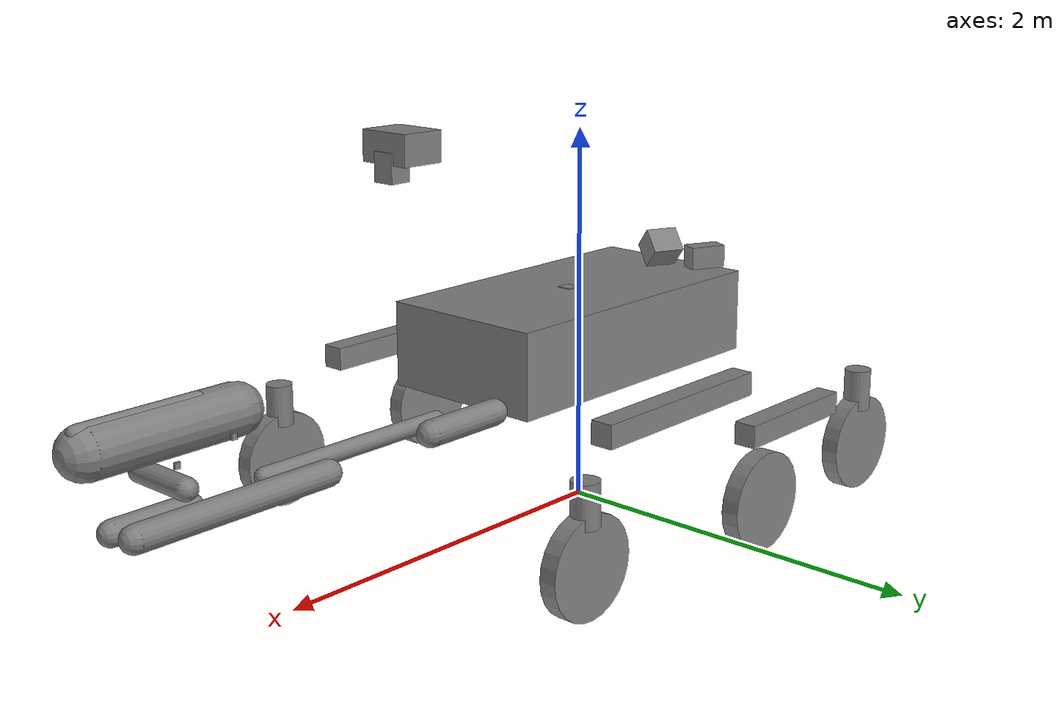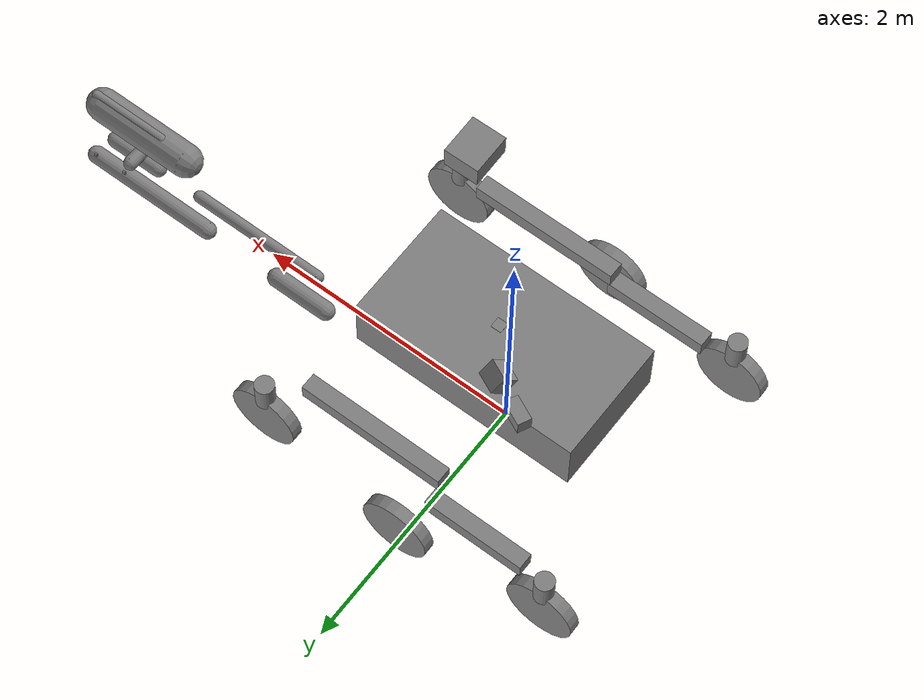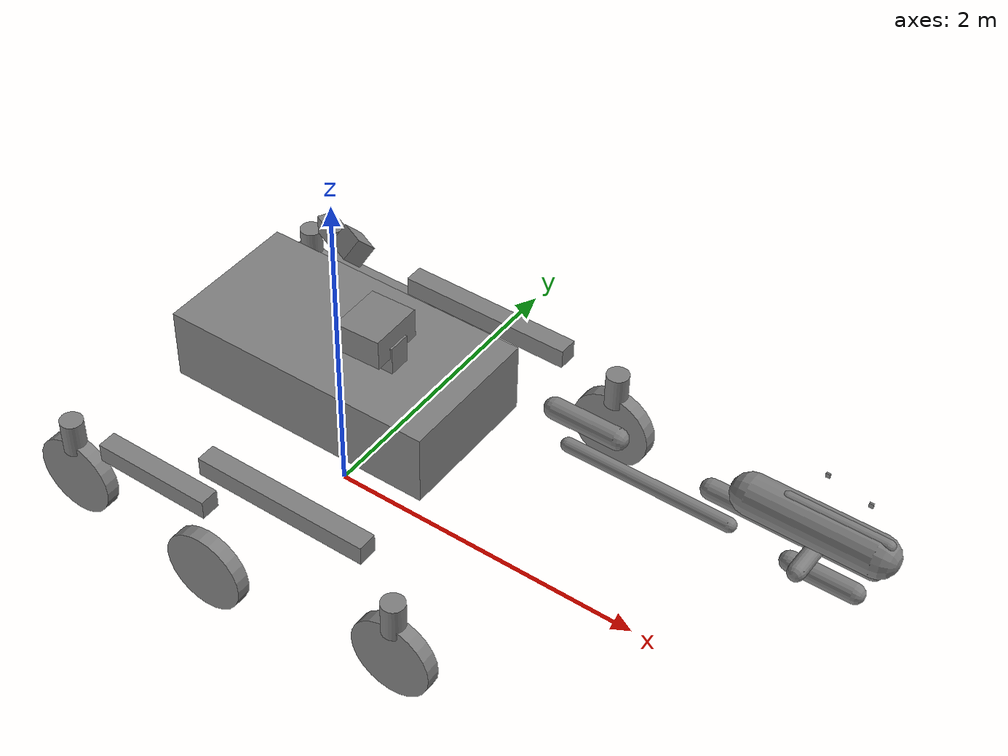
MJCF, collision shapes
<mujoco model="nasa_perseverance">
  <!-- Simulation-ready approximation from JPL visualization URDF.
       Not a flight-accurate dynamics model. Credit NASA/JPL-Caltech. -->
  <compiler angle="radian" meshdir="assets" texturedir="assets" autolimits="true"/>
  <option timestep="0.002" gravity="0 0 -9.81" integrator="implicitfast" cone="elliptic" impratio="10"/>
  <default>
    <default class="rover">
      <joint damping="2" armature="0.2"/>
      <default class="visual">
        <geom type="mesh" material="rover" contype="0" conaffinity="0" group="2"/>
      </default>
      <default class="collision">
        <geom group="3" contype="1" conaffinity="1" solref="0.01 1"/>
      </default>
      <!-- Compliant wheel contact approximates spoke flex; suspension stays articulated. -->
      <default class="wheel">
        <joint damping="0.15" armature="0.4" frictionloss="0.5"/>
        <geom type="cylinder" group="3" condim="3" friction="1.4 0.8 0.005" solref="0.04 1" solimp="0.9 0.95 0.001"/>
      </default>
      <default class="steer">
        <joint damping="2" armature="0.3" limited="true" range="-1.57 1.57"/>
      </default>
      <default class="suspension">
        <joint damping="80" armature="0.5" limited="true"/>
      </default>
    </default>
  </default>
  <asset>
    <texture type="2d" name="rover" file="M2020_Rover_Texture.png"/>
    <material name="rover" texture="rover" texuniform="false" rgba="1 1 1 1" metallic="0" roughness="1"/>
    <mesh name="chassis" file="chassis.obj"/>
    <mesh name="rocker_left" file="rocker_left.obj"/>
    <mesh name="bogie_left" file="bogie_left.obj"/>
    <mesh name="steer_lr" file="steer_lr.obj"/>
    <mesh name="wheel_lr" file="wheel_lr.obj"/>
    <mesh name="wheel_lm" file="wheel_lm.obj"/>
    <mesh name="steer_lf" file="steer_lf.obj"/>
    <mesh name="wheel_lf" file="wheel_lf.obj"/>
    <mesh name="rocker_right" file="rocker_right.obj"/>
    <mesh name="bogie_right" file="bogie_right.obj"/>
    <mesh name="steer_rr" file="steer_rr.obj"/>
    <mesh name="wheel_rr" file="wheel_rr.obj"/>
    <mesh name="wheel_rm" file="wheel_rm.obj"/>
    <mesh name="steer_rf" file="steer_rf.obj"/>
    <mesh name="wheel_rf" file="wheel_rf.obj"/>
    <mesh name="rsm_az" file="rsm_az.obj"/>
    <mesh name="rsm_el" file="rsm_el.obj"/>
    <mesh name="hga_az" file="hga_az.obj"/>
    <mesh name="hga_el" file="hga_el.obj"/>
    <mesh name="ra_link1" file="ra_link1.obj"/>
    <mesh name="ra_link2" file="ra_link2.obj"/>
    <mesh name="ra_link3" file="ra_link3.obj"/>
    <mesh name="ra_link4" file="ra_link4.obj"/>
    <mesh name="ra_link5" file="ra_link5.obj"/>
    <mesh name="turret" file="turret.obj"/>
    <mesh name="corer_feed" file="corer_feed.obj"/>
    <mesh name="stabilizer_far" file="stabilizer_far.obj"/>
    <mesh name="stabilizer_near" file="stabilizer_near.obj"/>
    <mesh name="watson_cap" file="watson_cap.obj"/>
    <mesh name="sherloc_cap" file="sherloc_cap.obj"/>
    <mesh name="differential" file="differential.obj"/>
  </asset>
  <worldbody>
    <body name="chassis" pos="0 0 0.002412" childclass="rover">
      <light name="tracking" mode="trackcom" pos="0 0 3"/>
      <freejoint name="root"/>
      <inertial pos="-0.128995 -0.0673295 1.204377" mass="652.255" diaginertia="244.192 587.067 650.916"/>
      <geom mesh="chassis" class="visual"/>
      <geom mesh="differential" class="visual"/>
      <geom name="chassis_collision" class="collision" type="box" size="0.85 0.45 0.22" pos="0.05 0 0.95"/>
      <body name="rocker_left" pos="0.30402 0.79959 0.89288" quat="1 0 0 0" childclass="rover">
        <joint name="left_rocker" class="suspension" type="hinge" axis="0 -1 0" limited="true" range="-0.35 0.35"/>
        <inertial pos="0.069102 0.1306575 -0.108713" mass="30.6944" diaginertia="0.904382 8.50565 8.60951"/>
        <geom mesh="rocker_left" class="visual"/>
        <geom name="rocker_left_collision" class="collision" type="box" size="0.55 0.06 0.06" pos="0.069102 0.1306575 -0.108713"/>
        <body name="bogie_left" pos="-0.754 0.12 -0.23" quat="1 0 0 0" childclass="rover">
          <joint name="left_bogie" class="suspension" type="hinge" axis="0 -1 0" limited="true" range="-0.4 0.4"/>
          <inertial pos="-0.050438 0.077519 -0.1363555" mass="21.1024" diaginertia="1.24746 3.76493 3.48635"/>
          <geom mesh="bogie_left" class="visual"/>
          <geom name="bogie_left_collision" class="collision" type="box" size="0.38 0.06 0.06" pos="-0.050438 0.077519 -0.1363555"/>
          <body name="steer_lr" pos="-0.625 0.14291 -0.4" quat="1 0 0 0" childclass="rover">
            <joint name="lr_steer" class="steer" type="hinge" axis="0 0 -1" limited="true" range="-1.57 1.57"/>
            <inertial pos="8e-05 -0.1126225 0.177625" mass="9.59199" diaginertia="0.338112 0.22318 0.184669"/>
            <geom mesh="steer_lr" class="visual"/>
            <geom name="steer_lr_collision" class="collision" type="cylinder" size="0.07 0.11" pos="0 0 0.30"/>
            <body name="wheel_lr" pos="0 0 0" quat="1 0 0 0" childclass="rover">
              <joint name="lr_drive" class="wheel" type="hinge" axis="0 1 0"/>
              <inertial pos="-0.0002 -4e-06 -0.000413" mass="19.184" diaginertia="0.486278 0.623125 0.486278"/>
              <geom mesh="wheel_lr" class="visual"/>
              <geom name="wheel_lr_collision" class="wheel" size="0.254879 0.045" pos="-0.0002 -4e-06 -0.000413" euler="1.570796 0 0"/>
            </body>
          </body>
          <body name="wheel_lm" pos="0.44998 0.26491 -0.4" quat="1 0 0 0" childclass="rover">
            <joint name="lm_drive" class="wheel" type="hinge" axis="0 1 0"/>
            <inertial pos="-0.0001785 -0.002005 -0.000414" mass="19.184" diaginertia="0.484761 0.620086 0.484761"/>
            <geom mesh="wheel_lm" class="visual"/>
            <geom name="wheel_lm_collision" class="wheel" size="0.254256 0.045" pos="-0.0001785 -0.002005 -0.000414" euler="1.570796 0 0"/>
          </body>
        </body>
        <body name="steer_lf" pos="0.881 0.26291 -0.63" quat="1 0 0 0" childclass="rover">
          <joint name="lf_steer" class="steer" type="hinge" axis="0 0 -1" limited="true" range="-1.57 1.57"/>
          <inertial pos="-0.0063445 -0.1498865 0.2566045" mass="9.59199" diaginertia="0.582526 0.373005 0.287876"/>
          <geom mesh="steer_lf" class="visual"/>
          <geom name="steer_lf_collision" class="collision" type="cylinder" size="0.07 0.11" pos="0 0 0.30"/>
          <body name="wheel_lf" pos="0 0 0" quat="1 0 0 0" childclass="rover">
            <joint name="lf_drive" class="wheel" type="hinge" axis="0 1 0"/>
            <inertial pos="-0.0001985 -4e-06 -0.000413" mass="19.184" diaginertia="0.486276 0.623121 0.486276"/>
            <geom mesh="wheel_lf" class="visual"/>
            <geom name="wheel_lf_collision" class="wheel" size="0.254878 0.045" pos="-0.0001985 -4e-06 -0.000413" euler="1.570796 0 0"/>
          </body>
        </body>
      </body>
      <body name="rocker_right" pos="0.30402 -0.79959 0.89288" quat="1 0 0 0" childclass="rover">
        <joint name="right_rocker" class="suspension" type="hinge" axis="0 -1 0" limited="true" range="-0.35 0.35"/>
        <inertial pos="0.069102 -0.1306575 -0.108713" mass="30.6944" diaginertia="0.904382 8.50565 8.60951"/>
        <geom mesh="rocker_right" class="visual"/>
        <geom name="rocker_right_collision" class="collision" type="box" size="0.55 0.06 0.06" pos="0.069102 -0.1306575 -0.108713"/>
        <body name="bogie_right" pos="-0.754 -0.12 -0.23" quat="1 0 0 0" childclass="rover">
          <joint name="right_bogie" class="suspension" type="hinge" axis="0 -1 0" limited="true" range="-0.4 0.4"/>
          <inertial pos="-0.050438 -0.077519 -0.1363555" mass="21.1024" diaginertia="1.24746 3.76493 3.48635"/>
          <geom mesh="bogie_right" class="visual"/>
          <geom name="bogie_right_collision" class="collision" type="box" size="0.38 0.06 0.06" pos="-0.050438 -0.077519 -0.1363555"/>
          <body name="steer_rr" pos="-0.625 -0.14291 -0.4" quat="1 0 0 0" childclass="rover">
            <joint name="rr_steer" class="steer" type="hinge" axis="0 0 -1" limited="true" range="-1.57 1.57"/>
            <inertial pos="8e-05 0.1126225 0.177625" mass="9.59199" diaginertia="0.338112 0.22318 0.184669"/>
            <geom mesh="steer_rr" class="visual"/>
            <geom name="steer_rr_collision" class="collision" type="cylinder" size="0.07 0.11" pos="0 0 0.30"/>
            <body name="wheel_rr" pos="0 0 0" quat="1 0 0 0" childclass="rover">
              <joint name="rr_drive" class="wheel" type="hinge" axis="0 1 0"/>
              <inertial pos="-0.0001865 -6e-06 -0.000414" mass="19.184" diaginertia="0.486269 0.623107 0.486269"/>
              <geom mesh="wheel_rr" class="visual"/>
              <geom name="wheel_rr_collision" class="wheel" size="0.254875 0.045" pos="-0.0001865 -6e-06 -0.000414" euler="1.570796 0 0"/>
            </body>
          </body>
          <body name="wheel_rm" pos="0.44998 -0.26491 -0.4" quat="1 0 0 0" childclass="rover">
            <joint name="rm_drive" class="wheel" type="hinge" axis="0 1 0"/>
            <inertial pos="-0.0001815 5e-06 -0.000412" mass="19.184" diaginertia="0.486086 0.622737 0.486086"/>
            <geom mesh="wheel_rm" class="visual"/>
            <geom name="wheel_rm_collision" class="wheel" size="0.254799 0.045" pos="-0.0001815 5e-06 -0.000412" euler="1.570796 0 0"/>
          </body>
        </body>
        <body name="steer_rf" pos="0.881 -0.26291 -0.63" quat="1 0 0 0" childclass="rover">
          <joint name="rf_steer" class="steer" type="hinge" axis="0 0 -1" limited="true" range="-1.57 1.57"/>
          <inertial pos="-0.0063445 0.1498865 0.2566045" mass="9.59199" diaginertia="0.582526 0.373005 0.287876"/>
          <geom mesh="steer_rf" class="visual"/>
          <geom name="steer_rf_collision" class="collision" type="cylinder" size="0.07 0.11" pos="0 0 0.30"/>
          <body name="wheel_rf" pos="0 0 0" quat="1 0 0 0" childclass="rover">
            <joint name="rf_drive" class="wheel" type="hinge" axis="0 1 0"/>
            <inertial pos="-0.0001975 4e-06 -0.000414" mass="19.184" diaginertia="0.486274 0.623116 0.486274"/>
            <geom mesh="wheel_rf" class="visual"/>
            <geom name="wheel_rf_collision" class="wheel" size="0.254877 0.045" pos="-0.0001975 4e-06 -0.000414" euler="1.570796 0 0"/>
          </body>
        </body>
      </body>
      <body name="rsm_az" pos="0.804037 -0.559028 1.91927" quat="-0.008726216 0 0 0.99996193" childclass="rover">
        <joint name="mast_az" class="rover" type="hinge" axis="0 0 -1" limited="true" range="0 6.31809"/>
        <inertial pos="-1.15e-05 -7.9e-05 -0.084906" mass="7.67359" diaginertia="0.0867923 0.0874965 0.0661379"/>
        <geom mesh="rsm_az" class="visual"/>
        <geom name="rsm_az_collision" class="collision" type="box" size="0.062868575 0.0622028 0.07996945" pos="-1.15e-05 -7.9e-05 -0.084906"/>
        <body name="rsm_el" pos="0 0 0" quat="0.70090818 -1.8762999e-06 0.71325151 1.8762999e-06" childclass="rover">
          <joint name="mast_el" class="rover" type="hinge" axis="0 -1 0" limited="true" range="0 3.1765"/>
          <inertial pos="-0.0122145 0.0035235 0.0775645" mass="11.5104" diaginertia="0.499595 0.298602 0.377966"/>
          <geom mesh="rsm_el" class="visual"/>
          <geom name="rsm_el_collision" class="collision" type="box" size="0.083524925 0.15107318 0.12870853" pos="-0.0122145 0.0035235 0.0775645"/>
        </body>
      </body>
      <body name="hga_az" pos="-0.36998 0.475 1.13288" quat="0.97629604 0 0 -0.21643946" childclass="rover">
        <joint name="hga_az" class="rover" type="hinge" axis="0 0 -1"/>
        <inertial pos="-0.053 -4.15e-05 0.1942195" mass="2.8776" diaginertia="0.0184475 0.0375912 0.0350012"/>
        <geom mesh="hga_az" class="visual"/>
        <geom name="hga_az_collision" class="collision" type="box" size="0.0924 0.050004625 0.057595725" pos="-0.053 -4.15e-05 0.1942195"/>
        <body name="hga_el" pos="0 0 0.248" quat="0.92387956 0.38268336 0 0" childclass="rover">
          <joint name="hga_el" class="rover" type="hinge" axis="1 0 0"/>
          <inertial pos="0.201444 0.010474 0.0111135" mass="4.79599" diaginertia="0.0493675 0.0593756 0.0593861"/>
          <geom mesh="hga_el" class="visual"/>
          <geom name="hga_el_collision" class="collision" type="box" size="0.0810271 0.0683496 0.068335025" pos="0.201444 0.010474 0.0111135"/>
        </body>
      </body>
      <body name="ra_base" pos="0.09002 0 1.13338" quat="1 0 0 0" childclass="rover">
        <inertial pos="0 0 0" mass="1.9184" diaginertia="0.00319733 0.00319733 0.00319733"/>
        <geom class="collision" type="box" size="0.04 0.04 0.04"/>
        <body name="ra_link1" pos="1.1756 0.4515 -0.3116" quat="1 0 0 0" childclass="rover">
          <joint name="arm_joint1" class="rover" type="hinge" axis="0 0 -1" limited="true" range="-3.145 1.592"/>
          <inertial pos="0.081965 0.0124565 0.0231115" mass="11.5104" diaginertia="0.234326 0.263808 0.288002"/>
          <geom mesh="ra_link1" class="visual"/>
          <geom name="ra_link1_collision" class="collision" type="capsule" size="0.0642416 0.203405" pos="0.081965 0.0124565 0.0231115" euler="0 1.570796 0"/>
          <body name="ra_link2" pos="0.166 0 0" quat="1 0 0 0" childclass="rover">
            <joint name="arm_joint2" class="rover" type="hinge" axis="0 1 0" limited="true" range="-3.267 0.126"/>
            <inertial pos="0.41712 -0.1613765 4.45e-05" mass="15.3472" diaginertia="0.123573 1.32786 1.35358"/>
            <geom mesh="ra_link2" class="visual"/>
            <geom name="ra_link2_collision" class="collision" type="capsule" size="0.0422781 0.5" pos="0.41712 -0.1613765 4.45e-05" euler="0 1.570796 0"/>
            <body name="ra_link3" pos="0.8194 0 0" quat="1 0 0 0" childclass="rover">
              <joint name="arm_joint3" class="rover" type="hinge" axis="0 1 0" limited="true" range="-2.866 2.866"/>
              <inertial pos="0.3702 0.0059495 0.001224" mass="13.4288" diaginertia="0.200187 1.08757 1.15983"/>
              <geom mesh="ra_link3" class="visual"/>
              <geom name="ra_link3_collision" class="collision" type="capsule" size="0.0610573 0.4782" pos="0.3702 0.0059495 0.001224" euler="0 1.570796 0"/>
              <body name="ra_link4" pos="0.7533 0 0" quat="1 0 0 0" childclass="rover">
                <joint name="arm_joint4" class="rover" type="hinge" axis="0 1 0" limited="true" range="-0.178 3.669"/>
                <inertial pos="-0.104065 -0.171089 -0.0279455" mass="9.59199" diaginertia="0.130314 0.195047 0.156247"/>
                <geom mesh="ra_link4" class="visual"/>
                <geom name="ra_link4_collision" class="collision" type="capsule" size="0.0569179 0.185895" pos="-0.104065 -0.171089 -0.0279455" euler="0 1.570796 0"/>
                <body name="ra_link5" pos="-0.1757 -0.1791 0" quat="1 0 0 0" childclass="rover">
                  <joint name="arm_joint5" class="rover" type="hinge" axis="0 0 -1" limited="true" range="-0.353 6.636"/>
                  <inertial pos="-0.00308 -0.0086275 0.114969" mass="7.67359" diaginertia="0.0829243 0.0742939 0.112818"/>
                  <geom mesh="ra_link5" class="visual"/>
                  <geom name="ra_link5_collision" class="collision" type="capsule" size="0.0499485 0.154079" pos="-0.00308 -0.0086275 0.114969" euler="1.570796 0 0"/>
                  <body name="turret" pos="-2.7386 -0.2724 0.3116" quat="1 0 0 0" childclass="rover">
                    <inertial pos="2.721945 0.2656075 0.0079265" mass="21.1024" diaginertia="0.943939 1.05246 1.66268"/>
                    <geom mesh="turret" class="visual"/>
                    <geom name="turret_collision" class="collision" type="capsule" size="0.116331 0.354825" pos="2.721945 0.2656075 0.0079265" euler="0 1.570796 0"/>
                    <body name="corer_feed" pos="2.5301 0.272349 0.0168656" quat="1 0 0 0" childclass="rover">
                      <joint name="drill_feed" class="rover" type="slide" axis="1 0 0" limited="true" range="0 0.12"/>
                      <inertial pos="0.4319185 -2.75e-05 0.0003385" mass="3.8368" diaginertia="0.00270857 0.00680239 0.00683302"/>
                      <geom mesh="corer_feed" class="visual"/>
                      <geom name="corer_feed_collision" class="collision" type="capsule" size="0.035 0.0653595" pos="0.4319185 -2.75e-05 0.0003385" euler="0 1.570796 0"/>
                    </body>
                    <body name="stabilizer_far" pos="2.5301 0.272349 0.0168656" quat="1 0 0 0" childclass="rover">
                      <joint name="stabilizer_lower" class="rover" type="slide" axis="-1 0 0" limited="true" range="0 0.12"/>
                      <inertial pos="0.304999 6e-05 -0.0801865" mass="1.4388" diaginertia="0.000220247 0.0372965 0.0373214"/>
                      <geom mesh="stabilizer_far" class="visual"/>
                      <geom name="stabilizer_far_collision" class="collision" type="capsule" size="0.035 0.2785" pos="0.304999 6e-05 -0.0801865" euler="0 1.570796 0"/>
                    </body>
                    <body name="stabilizer_near" pos="2.5301 0.272349 0.0168656" quat="1 0 0 0" childclass="rover">
                      <joint name="stabilizer_upper" class="rover" type="slide" axis="-1 0 0" limited="true" range="0 0.12"/>
                      <inertial pos="0.304999 5.95e-05 0.080255" mass="1.4388" diaginertia="0.000220522 0.0372965 0.0373217"/>
                      <geom mesh="stabilizer_near" class="visual"/>
                      <geom name="stabilizer_near_collision" class="collision" type="capsule" size="0.035 0.2785" pos="0.304999 5.95e-05 0.080255" euler="0 1.570796 0"/>
                    </body>
                    <body name="watson_cap" pos="2.6025 0.581204 0.0309103" quat="1 0 0 0" childclass="rover">
                      <joint name="watson_cap" class="rover" type="hinge" axis="0 0 1" limited="true" range="-0.2 1.8"/>
                      <inertial pos="0.019445 0.0075315 0.000315" mass="0.767359" diaginertia="0.000187565 0.000293826 0.000161428"/>
                      <geom mesh="watson_cap" class="visual"/>
                      <geom name="watson_cap_collision" class="collision" type="box" size="0.01258125 0.005711475 0.01375495" pos="0.019445 0.0075315 0.000315"/>
                    </body>
                    <body name="sherloc_cap" pos="2.86084 0.58439 -0.0124626" quat="1 0 0 0" childclass="rover">
                      <joint name="sherloc_cap" class="rover" type="hinge" axis="0 0 1" limited="true" range="-0.2 1.8"/>
                      <inertial pos="0.019745 -0.0068005 -0.0069615" mass="0.767359" diaginertia="0.000182889 0.000295573 0.000159943"/>
                      <geom mesh="sherloc_cap" class="visual"/>
                      <geom name="sherloc_cap_collision" class="collision" type="box" size="0.01269675 0.0055 0.013723875" pos="0.019745 -0.0068005 -0.0069615"/>
                    </body>
                  </body>
                </body>
              </body>
            </body>
          </body>
        </body>
      </body>
    </body>
  </worldbody>
  <contact>
    <exclude body1="chassis" body2="wheel_lf"/>
    <exclude body1="chassis" body2="wheel_lm"/>
    <exclude body1="chassis" body2="wheel_lr"/>
    <exclude body1="chassis" body2="wheel_rf"/>
    <exclude body1="chassis" body2="wheel_rm"/>
    <exclude body1="chassis" body2="wheel_rr"/>
    <exclude body1="chassis" body2="steer_lf"/>
    <exclude body1="chassis" body2="steer_lr"/>
    <exclude body1="chassis" body2="steer_rf"/>
    <exclude body1="chassis" body2="steer_rr"/>
    <exclude body1="chassis" body2="bogie_left"/>
    <exclude body1="chassis" body2="bogie_right"/>
    <exclude body1="chassis" body2="rocker_left"/>
    <exclude body1="chassis" body2="rocker_right"/>
    <exclude body1="chassis" body2="ra_link1"/>
    <exclude body1="chassis" body2="ra_link2"/>
    <exclude body1="chassis" body2="ra_link3"/>
    <exclude body1="chassis" body2="ra_base"/>
    <exclude body1="chassis" body2="turret"/>
    <exclude body1="rocker_left" body2="wheel_lf"/>
    <exclude body1="rocker_left" body2="wheel_lm"/>
    <exclude body1="rocker_left" body2="wheel_lr"/>
    <exclude body1="rocker_left" body2="steer_lf"/>
    <exclude body1="rocker_left" body2="steer_lr"/>
    <exclude body1="rocker_right" body2="wheel_rf"/>
    <exclude body1="rocker_right" body2="wheel_rm"/>
    <exclude body1="rocker_right" body2="wheel_rr"/>
    <exclude body1="rocker_right" body2="steer_rf"/>
    <exclude body1="rocker_right" body2="steer_rr"/>
    <exclude body1="bogie_left" body2="wheel_lr"/>
    <exclude body1="bogie_left" body2="steer_lr"/>
    <exclude body1="bogie_right" body2="wheel_rr"/>
    <exclude body1="bogie_right" body2="steer_rr"/>
    <exclude body1="steer_lf" body2="ra_link1"/>
    <exclude body1="steer_lf" body2="ra_link2"/>
    <exclude body1="steer_rf" body2="ra_link1"/>
    <exclude body1="steer_rf" body2="ra_link2"/>
    <exclude body1="wheel_lf" body2="ra_link1"/>
    <exclude body1="ra_link1" body2="ra_link3"/>
    <exclude body1="ra_link1" body2="ra_link4"/>
    <exclude body1="ra_link2" body2="ra_link4"/>
    <exclude body1="ra_link2" body2="ra_link5"/>
    <exclude body1="ra_link3" body2="ra_link5"/>
    <exclude body1="ra_link3" body2="turret"/>
  </contact>
  <equality>
    <joint name="rocker_differential" joint1="left_rocker" joint2="right_rocker" polycoef="0 -1 0 0 0" solref="0.02 1"/>
  </equality>
  <actuator>
    <velocity name="lf_drive" joint="lf_drive" kv="80" ctrllimited="true" ctrlrange="-8 8"/>
    <velocity name="lm_drive" joint="lm_drive" kv="80" ctrllimited="true" ctrlrange="-8 8"/>
    <velocity name="lr_drive" joint="lr_drive" kv="80" ctrllimited="true" ctrlrange="-8 8"/>
    <velocity name="rf_drive" joint="rf_drive" kv="80" ctrllimited="true" ctrlrange="-8 8"/>
    <velocity name="rm_drive" joint="rm_drive" kv="80" ctrllimited="true" ctrlrange="-8 8"/>
    <velocity name="rr_drive" joint="rr_drive" kv="80" ctrllimited="true" ctrlrange="-8 8"/>
    <position name="lf_steer" joint="lf_steer" kp="800" kv="40" ctrlrange="-1.57 1.57"/>
    <position name="rf_steer" joint="rf_steer" kp="800" kv="40" ctrlrange="-1.57 1.57"/>
    <position name="lr_steer" joint="lr_steer" kp="800" kv="40" ctrlrange="-1.57 1.57"/>
    <position name="rr_steer" joint="rr_steer" kp="800" kv="40" ctrlrange="-1.57 1.57"/>
    <position name="mast_az_hold" joint="mast_az" kp="2200" kv="200"/>
    <position name="mast_el_hold" joint="mast_el" kp="2200" kv="200"/>
    <position name="hga_az_hold" joint="hga_az" kp="2200" kv="200"/>
    <position name="hga_el_hold" joint="hga_el" kp="2200" kv="200"/>
    <!-- Estimated Earth-gravity gains: kp holds the load; kv slows target changes (~1 s). -->
    <position name="arm_joint1_hold" joint="arm_joint1" kp="60000" kv="60000"/>
    <position name="arm_joint2_hold" joint="arm_joint2" kp="60000" kv="60000"/>
    <position name="arm_joint3_hold" joint="arm_joint3" kp="60000" kv="60000"/>
    <position name="arm_joint4_hold" joint="arm_joint4" kp="60000" kv="60000"/>
    <position name="arm_joint5_hold" joint="arm_joint5" kp="60000" kv="60000"/>
    <position name="drill_feed_hold" joint="drill_feed" kp="2200" kv="200"/>
    <position name="stabilizer_lower_hold" joint="stabilizer_lower" kp="2200" kv="200"/>
    <position name="stabilizer_upper_hold" joint="stabilizer_upper" kp="2200" kv="200"/>
    <position name="watson_cap_hold" joint="watson_cap" kp="2200" kv="200"/>
    <position name="sherloc_cap_hold" joint="sherloc_cap" kp="2200" kv="200"/>
  </actuator>
  <keyframe>
    <key name="home" qpos="0 0 0.002412 1 0 0 0 0 0 0 0 0 0 0 0 0 0 0 0 0 0 0 0 0 0 0 0 0 0 0 0 0 0 0 0" ctrl="0 0 0 0 0 0 0 0 0 0 0 0 0 0 0 0 0 0 0 0 0 0 0 0"/>
  </keyframe>
</mujoco>
